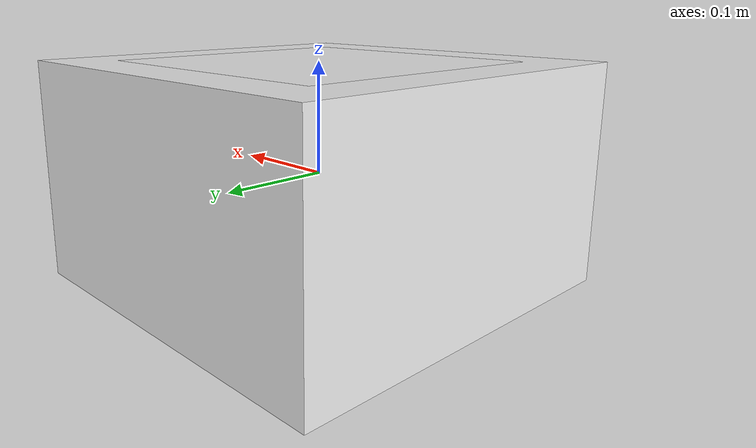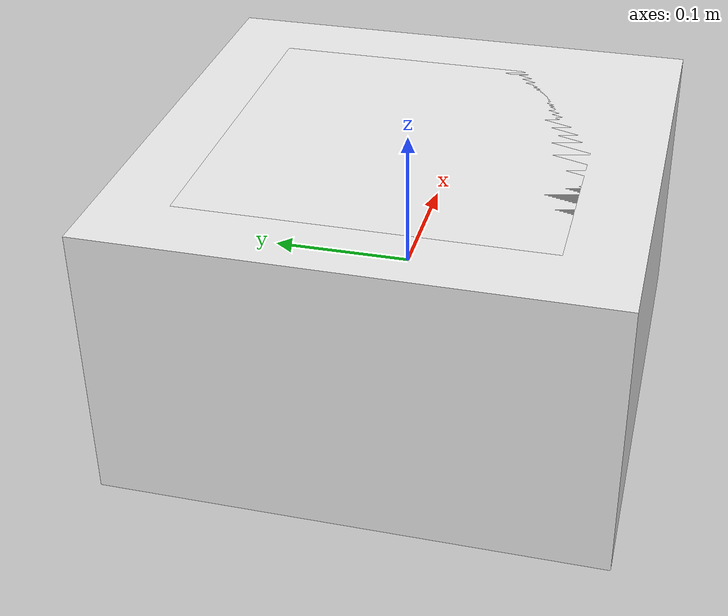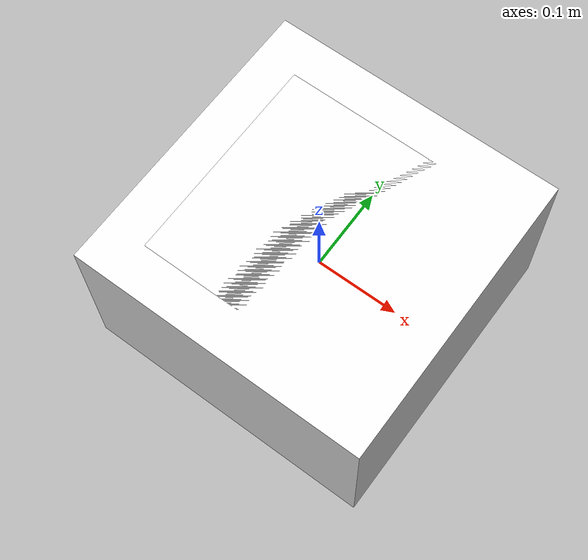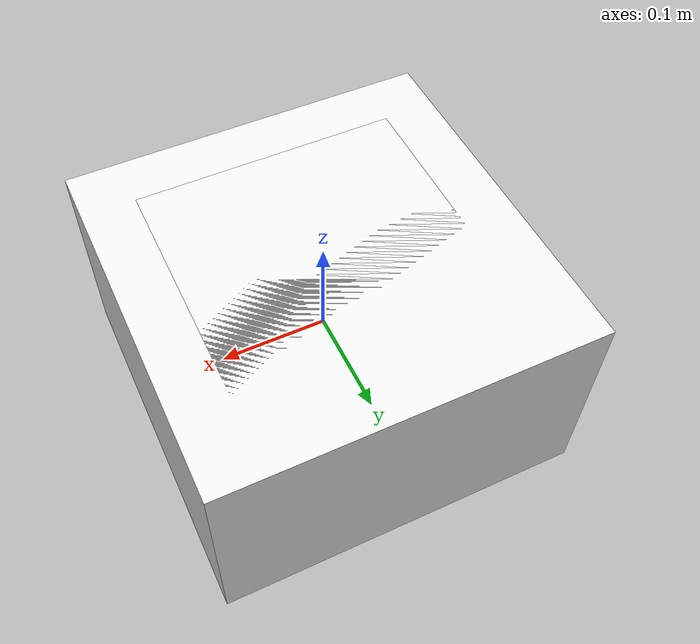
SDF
<?xml version="1.0" ?>
<sdf version="1.5">
  <model name="center_box">
    <static>true</static>
    <link name="link">
      <collision name="collision">
        <pose>0 0 0 0 0 0</pose>
        <geometry>
          <box>
            <size>0.4 0.4 0.2</size>
          </box>
        </geometry>
      </collision>
      <visual name="visual">
        <pose>0 0 0 0 0 0</pose>
        <geometry> <box> <size>0.35 0.35 0.2</size> </box> </geometry>
        <material><script><name>Gazebo/White</name></script></material>
      </visual>
      <collision name="collision_in">
        <pose>0 0 0 0 0 0</pose>
        <geometry>
          <box>
            <size>0.25 0.25 0.2</size>
          </box>
        </geometry>
      </collision>
      <visual name="visual_in">
        <pose>0 0 0 0 0 0</pose>
        <geometry> <box> <size>0.25 0.25 0.2</size> </box> </geometry>
        <material><script><name>Gazebo/White</name></script></material>
      </visual>
    </link>
  </model>
</sdf>
